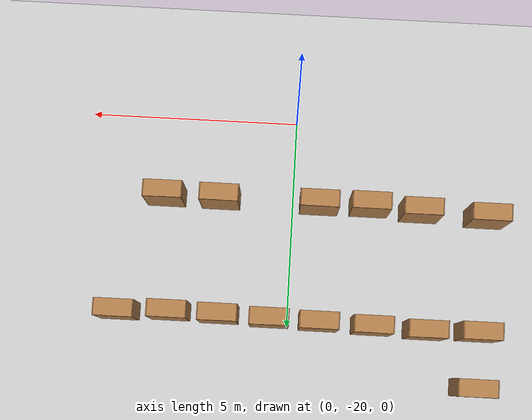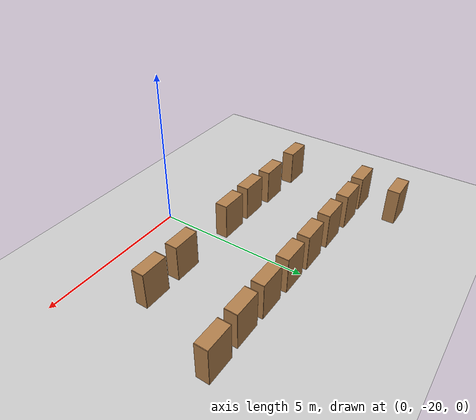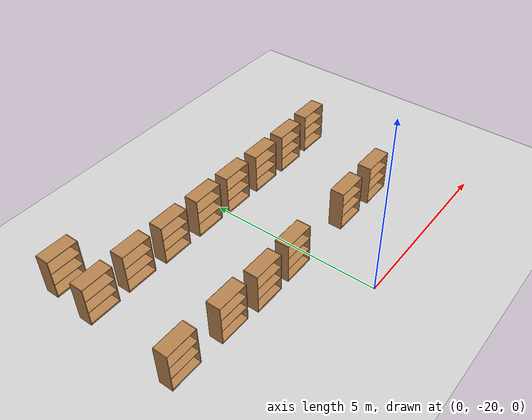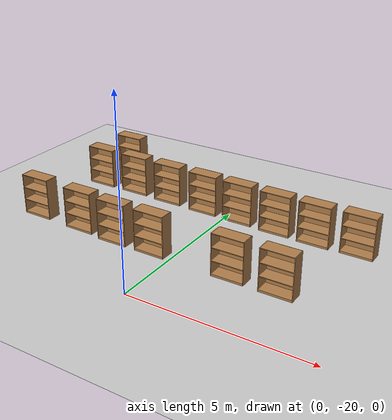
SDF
<sdf version="1.6">
 <world name="default">
  <model name="ground_plane">
   <static>1</static>
   <link name="link">
    <collision name="collision">
     <geometry><plane><normal>0 0 1</normal><size>100 100</size></plane></geometry>
     <surface>
      <contact><collide_bitmask>65535</collide_bitmask></contact>
      <friction><ode><mu>100</mu><mu2>50</mu2></ode></friction>
     </surface>
    </collision>
    <visual name="visual">
     <cast_shadows>0</cast_shadows>
     <geometry><plane><normal>0 0 1</normal><size>100 100</size></plane></geometry>
     <material>
      <script><uri>file://media/materials/scripts/gazebo.material</uri><name>Gazebo/Grey</name></script>
     </material>
    </visual>
   </link>
  </model>
  <model name="bookshelf_clone_19">
   <static>1</static>
   <link name="link">
    <inertial><mass>1</mass></inertial>
    <collision name="back">
     <pose>0 0.005 0.6 0 -0 0</pose>
     <geometry><box><size>0.9 0.01 1.2</size></box></geometry>
    </collision>
    <visual name="visual1">
     <pose>0 0.005 0.6 0 -0 0</pose>
     <geometry><box><size>0.9 0.01 1.2</size></box></geometry>
     <material>
      <script><uri>file://media/materials/scripts/gazebo.material</uri><name>Gazebo/Wood</name></script>
     </material>
    </visual>
    <collision name="left_side">
     <pose>0.45 -0.195 0.6 0 -0 0</pose>
     <geometry><box><size>0.02 0.4 1.2</size></box></geometry>
    </collision>
    <visual name="visual2">
     <pose>0.45 -0.195 0.6 0 -0 0</pose>
     <geometry><box><size>0.02 0.4 1.2</size></box></geometry>
     <material>
      <script><uri>file://media/materials/scripts/gazebo.material</uri><name>Gazebo/Wood</name></script>
     </material>
    </visual>
    <collision name="right_side">
     <pose>-0.45 -0.195 0.6 0 -0 0</pose>
     <geometry><box><size>0.02 0.4 1.2</size></box></geometry>
    </collision>
    <visual name="visual3">
     <pose>-0.45 -0.195 0.6 0 -0 0</pose>
     <geometry><box><size>0.02 0.4 1.2</size></box></geometry>
     <material>
      <script><uri>file://media/materials/scripts/gazebo.material</uri><name>Gazebo/Wood</name></script>
     </material>
    </visual>
    <collision name="bottom">
     <pose>0 -0.195 0.03 0 -0 0</pose>
     <geometry><box><size>0.88 0.4 0.06</size></box></geometry>
    </collision>
    <visual name="visual4">
     <pose>0 -0.195 0.03 0 -0 0</pose>
     <geometry><box><size>0.88 0.4 0.06</size></box></geometry>
     <material>
      <script><uri>file://media/materials/scripts/gazebo.material</uri><name>Gazebo/Wood</name></script>
     </material>
    </visual>
    <collision name="top">
     <pose>0 -0.195 1.19 0 -0 0</pose>
     <geometry><box><size>0.88 0.4 0.02</size></box></geometry>
    </collision>
    <visual name="visual5">
     <pose>0 -0.195 1.19 0 -0 0</pose>
     <geometry><box><size>0.88 0.4 0.02</size></box></geometry>
     <material>
      <script><uri>file://media/materials/scripts/gazebo.material</uri><name>Gazebo/Wood</name></script>
     </material>
    </visual>
    <collision name="low_shelf">
     <pose>0 -0.195 0.43 0 -0 0</pose>
     <geometry><box><size>0.88 0.4 0.02</size></box></geometry>
    </collision>
    <visual name="visual6">
     <pose>0 -0.195 0.43 0 -0 0</pose>
     <geometry><box><size>0.88 0.4 0.02</size></box></geometry>
     <material>
      <script><uri>file://media/materials/scripts/gazebo.material</uri><name>Gazebo/Wood</name></script>
     </material>
    </visual>
    <collision name="high_shelf">
     <pose>0 -0.195 0.8 0 -0 0</pose>
     <geometry><box><size>0.88 0.4 0.02</size></box></geometry>
    </collision>
    <visual name="visual7">
     <pose>0 -0.195 0.8 0 -0 0</pose>
     <geometry><box><size>0.88 0.4 0.02</size></box></geometry>
     <material>
      <script><uri>file://media/materials/scripts/gazebo.material</uri><name>Gazebo/Wood</name></script>
     </material>
    </visual>
   </link>
   <pose>-4.3579 -13.6064 0 0 -0 0</pose>
  </model>
  <model name="bookshelf_clone_20">
   <static>1</static>
   <link name="link">
    <inertial><mass>1</mass></inertial>
    <collision name="back">
     <pose>0 0.005 0.6 0 -0 0</pose>
     <geometry><box><size>0.9 0.01 1.2</size></box></geometry>
    </collision>
    <visual name="visual1">
     <pose>0 0.005 0.6 0 -0 0</pose>
     <geometry><box><size>0.9 0.01 1.2</size></box></geometry>
     <material>
      <script><uri>file://media/materials/scripts/gazebo.material</uri><name>Gazebo/Wood</name></script>
     </material>
    </visual>
    <collision name="left_side">
     <pose>0.45 -0.195 0.6 0 -0 0</pose>
     <geometry><box><size>0.02 0.4 1.2</size></box></geometry>
    </collision>
    <visual name="visual2">
     <pose>0.45 -0.195 0.6 0 -0 0</pose>
     <geometry><box><size>0.02 0.4 1.2</size></box></geometry>
     <material>
      <script><uri>file://media/materials/scripts/gazebo.material</uri><name>Gazebo/Wood</name></script>
     </material>
    </visual>
    <collision name="right_side">
     <pose>-0.45 -0.195 0.6 0 -0 0</pose>
     <geometry><box><size>0.02 0.4 1.2</size></box></geometry>
    </collision>
    <visual name="visual3">
     <pose>-0.45 -0.195 0.6 0 -0 0</pose>
     <geometry><box><size>0.02 0.4 1.2</size></box></geometry>
     <material>
      <script><uri>file://media/materials/scripts/gazebo.material</uri><name>Gazebo/Wood</name></script>
     </material>
    </visual>
    <collision name="bottom">
     <pose>0 -0.195 0.03 0 -0 0</pose>
     <geometry><box><size>0.88 0.4 0.06</size></box></geometry>
    </collision>
    <visual name="visual4">
     <pose>0 -0.195 0.03 0 -0 0</pose>
     <geometry><box><size>0.88 0.4 0.06</size></box></geometry>
     <material>
      <script><uri>file://media/materials/scripts/gazebo.material</uri><name>Gazebo/Wood</name></script>
     </material>
    </visual>
    <collision name="top">
     <pose>0 -0.195 1.19 0 -0 0</pose>
     <geometry><box><size>0.88 0.4 0.02</size></box></geometry>
    </collision>
    <visual name="visual5">
     <pose>0 -0.195 1.19 0 -0 0</pose>
     <geometry><box><size>0.88 0.4 0.02</size></box></geometry>
     <material>
      <script><uri>file://media/materials/scripts/gazebo.material</uri><name>Gazebo/Wood</name></script>
     </material>
    </visual>
    <collision name="low_shelf">
     <pose>0 -0.195 0.43 0 -0 0</pose>
     <geometry><box><size>0.88 0.4 0.02</size></box></geometry>
    </collision>
    <visual name="visual6">
     <pose>0 -0.195 0.43 0 -0 0</pose>
     <geometry><box><size>0.88 0.4 0.02</size></box></geometry>
     <material>
      <script><uri>file://media/materials/scripts/gazebo.material</uri><name>Gazebo/Wood</name></script>
     </material>
    </visual>
    <collision name="high_shelf">
     <pose>0 -0.195 0.8 0 -0 0</pose>
     <geometry><box><size>0.88 0.4 0.02</size></box></geometry>
    </collision>
    <visual name="visual7">
     <pose>0 -0.195 0.8 0 -0 0</pose>
     <geometry><box><size>0.88 0.4 0.02</size></box></geometry>
     <material>
      <script><uri>file://media/materials/scripts/gazebo.material</uri><name>Gazebo/Wood</name></script>
     </material>
    </visual>
   </link>
   <pose>-4.44997 -14.9019 0 0 -0 0</pose>
  </model>
  <model name="bookshelf_clone_21">
   <static>1</static>
   <link name="link">
    <inertial><mass>1</mass></inertial>
    <collision name="back">
     <pose>0 0.005 0.6 0 -0 0</pose>
     <geometry><box><size>0.9 0.01 1.2</size></box></geometry>
    </collision>
    <visual name="visual1">
     <pose>0 0.005 0.6 0 -0 0</pose>
     <geometry><box><size>0.9 0.01 1.2</size></box></geometry>
     <material>
      <script><uri>file://media/materials/scripts/gazebo.material</uri><name>Gazebo/Wood</name></script>
     </material>
    </visual>
    <collision name="left_side">
     <pose>0.45 -0.195 0.6 0 -0 0</pose>
     <geometry><box><size>0.02 0.4 1.2</size></box></geometry>
    </collision>
    <visual name="visual2">
     <pose>0.45 -0.195 0.6 0 -0 0</pose>
     <geometry><box><size>0.02 0.4 1.2</size></box></geometry>
     <material>
      <script><uri>file://media/materials/scripts/gazebo.material</uri><name>Gazebo/Wood</name></script>
     </material>
    </visual>
    <collision name="right_side">
     <pose>-0.45 -0.195 0.6 0 -0 0</pose>
     <geometry><box><size>0.02 0.4 1.2</size></box></geometry>
    </collision>
    <visual name="visual3">
     <pose>-0.45 -0.195 0.6 0 -0 0</pose>
     <geometry><box><size>0.02 0.4 1.2</size></box></geometry>
     <material>
      <script><uri>file://media/materials/scripts/gazebo.material</uri><name>Gazebo/Wood</name></script>
     </material>
    </visual>
    <collision name="bottom">
     <pose>0 -0.195 0.03 0 -0 0</pose>
     <geometry><box><size>0.88 0.4 0.06</size></box></geometry>
    </collision>
    <visual name="visual4">
     <pose>0 -0.195 0.03 0 -0 0</pose>
     <geometry><box><size>0.88 0.4 0.06</size></box></geometry>
     <material>
      <script><uri>file://media/materials/scripts/gazebo.material</uri><name>Gazebo/Wood</name></script>
     </material>
    </visual>
    <collision name="top">
     <pose>0 -0.195 1.19 0 -0 0</pose>
     <geometry><box><size>0.88 0.4 0.02</size></box></geometry>
    </collision>
    <visual name="visual5">
     <pose>0 -0.195 1.19 0 -0 0</pose>
     <geometry><box><size>0.88 0.4 0.02</size></box></geometry>
     <material>
      <script><uri>file://media/materials/scripts/gazebo.material</uri><name>Gazebo/Wood</name></script>
     </material>
    </visual>
    <collision name="low_shelf">
     <pose>0 -0.195 0.43 0 -0 0</pose>
     <geometry><box><size>0.88 0.4 0.02</size></box></geometry>
    </collision>
    <visual name="visual6">
     <pose>0 -0.195 0.43 0 -0 0</pose>
     <geometry><box><size>0.88 0.4 0.02</size></box></geometry>
     <material>
      <script><uri>file://media/materials/scripts/gazebo.material</uri><name>Gazebo/Wood</name></script>
     </material>
    </visual>
    <collision name="high_shelf">
     <pose>0 -0.195 0.8 0 -0 0</pose>
     <geometry><box><size>0.88 0.4 0.02</size></box></geometry>
    </collision>
    <visual name="visual7">
     <pose>0 -0.195 0.8 0 -0 0</pose>
     <geometry><box><size>0.88 0.4 0.02</size></box></geometry>
     <material>
      <script><uri>file://media/materials/scripts/gazebo.material</uri><name>Gazebo/Wood</name></script>
     </material>
    </visual>
   </link>
   <pose>-4.61221 -17.6478 0 0 -0 0</pose>
  </model>
  <model name="bookshelf_clone_17_clone_7">
   <static>1</static>
   <link name="link">
    <inertial><mass>1</mass></inertial>
    <collision name="back">
     <pose>0 0.005 0.6 0 -0 0</pose>
     <geometry><box><size>0.9 0.01 1.2</size></box></geometry>
    </collision>
    <visual name="visual1">
     <pose>0 0.005 0.6 0 -0 0</pose>
     <geometry><box><size>0.9 0.01 1.2</size></box></geometry>
     <material>
      <script><uri>file://media/materials/scripts/gazebo.material</uri><name>Gazebo/Wood</name></script>
     </material>
    </visual>
    <collision name="left_side">
     <pose>0.45 -0.195 0.6 0 -0 0</pose>
     <geometry><box><size>0.02 0.4 1.2</size></box></geometry>
    </collision>
    <visual name="visual2">
     <pose>0.45 -0.195 0.6 0 -0 0</pose>
     <geometry><box><size>0.02 0.4 1.2</size></box></geometry>
     <material>
      <script><uri>file://media/materials/scripts/gazebo.material</uri><name>Gazebo/Wood</name></script>
     </material>
    </visual>
    <collision name="right_side">
     <pose>-0.45 -0.195 0.6 0 -0 0</pose>
     <geometry><box><size>0.02 0.4 1.2</size></box></geometry>
    </collision>
    <visual name="visual3">
     <pose>-0.45 -0.195 0.6 0 -0 0</pose>
     <geometry><box><size>0.02 0.4 1.2</size></box></geometry>
     <material>
      <script><uri>file://media/materials/scripts/gazebo.material</uri><name>Gazebo/Wood</name></script>
     </material>
    </visual>
    <collision name="bottom">
     <pose>0 -0.195 0.03 0 -0 0</pose>
     <geometry><box><size>0.88 0.4 0.06</size></box></geometry>
    </collision>
    <visual name="visual4">
     <pose>0 -0.195 0.03 0 -0 0</pose>
     <geometry><box><size>0.88 0.4 0.06</size></box></geometry>
     <material>
      <script><uri>file://media/materials/scripts/gazebo.material</uri><name>Gazebo/Wood</name></script>
     </material>
    </visual>
    <collision name="top">
     <pose>0 -0.195 1.19 0 -0 0</pose>
     <geometry><box><size>0.88 0.4 0.02</size></box></geometry>
    </collision>
    <visual name="visual5">
     <pose>0 -0.195 1.19 0 -0 0</pose>
     <geometry><box><size>0.88 0.4 0.02</size></box></geometry>
     <material>
      <script><uri>file://media/materials/scripts/gazebo.material</uri><name>Gazebo/Wood</name></script>
     </material>
    </visual>
    <collision name="low_shelf">
     <pose>0 -0.195 0.43 0 -0 0</pose>
     <geometry><box><size>0.88 0.4 0.02</size></box></geometry>
    </collision>
    <visual name="visual6">
     <pose>0 -0.195 0.43 0 -0 0</pose>
     <geometry><box><size>0.88 0.4 0.02</size></box></geometry>
     <material>
      <script><uri>file://media/materials/scripts/gazebo.material</uri><name>Gazebo/Wood</name></script>
     </material>
    </visual>
    <collision name="high_shelf">
     <pose>0 -0.195 0.8 0 -0 0</pose>
     <geometry><box><size>0.88 0.4 0.02</size></box></geometry>
    </collision>
    <visual name="visual7">
     <pose>0 -0.195 0.8 0 -0 0</pose>
     <geometry><box><size>0.88 0.4 0.02</size></box></geometry>
     <material>
      <script><uri>file://media/materials/scripts/gazebo.material</uri><name>Gazebo/Wood</name></script>
     </material>
    </visual>
   </link>
   <pose>-3.21581 -14.8822 0 0 -0 0</pose>
  </model>
  <model name="bookshelf_clone_17_clone_8">
   <static>1</static>
   <link name="link">
    <inertial><mass>1</mass></inertial>
    <collision name="back">
     <pose>0 0.005 0.6 0 -0 0</pose>
     <geometry><box><size>0.9 0.01 1.2</size></box></geometry>
    </collision>
    <visual name="visual1">
     <pose>0 0.005 0.6 0 -0 0</pose>
     <geometry><box><size>0.9 0.01 1.2</size></box></geometry>
     <material>
      <script><uri>file://media/materials/scripts/gazebo.material</uri><name>Gazebo/Wood</name></script>
     </material>
    </visual>
    <collision name="left_side">
     <pose>0.45 -0.195 0.6 0 -0 0</pose>
     <geometry><box><size>0.02 0.4 1.2</size></box></geometry>
    </collision>
    <visual name="visual2">
     <pose>0.45 -0.195 0.6 0 -0 0</pose>
     <geometry><box><size>0.02 0.4 1.2</size></box></geometry>
     <material>
      <script><uri>file://media/materials/scripts/gazebo.material</uri><name>Gazebo/Wood</name></script>
     </material>
    </visual>
    <collision name="right_side">
     <pose>-0.45 -0.195 0.6 0 -0 0</pose>
     <geometry><box><size>0.02 0.4 1.2</size></box></geometry>
    </collision>
    <visual name="visual3">
     <pose>-0.45 -0.195 0.6 0 -0 0</pose>
     <geometry><box><size>0.02 0.4 1.2</size></box></geometry>
     <material>
      <script><uri>file://media/materials/scripts/gazebo.material</uri><name>Gazebo/Wood</name></script>
     </material>
    </visual>
    <collision name="bottom">
     <pose>0 -0.195 0.03 0 -0 0</pose>
     <geometry><box><size>0.88 0.4 0.06</size></box></geometry>
    </collision>
    <visual name="visual4">
     <pose>0 -0.195 0.03 0 -0 0</pose>
     <geometry><box><size>0.88 0.4 0.06</size></box></geometry>
     <material>
      <script><uri>file://media/materials/scripts/gazebo.material</uri><name>Gazebo/Wood</name></script>
     </material>
    </visual>
    <collision name="top">
     <pose>0 -0.195 1.19 0 -0 0</pose>
     <geometry><box><size>0.88 0.4 0.02</size></box></geometry>
    </collision>
    <visual name="visual5">
     <pose>0 -0.195 1.19 0 -0 0</pose>
     <geometry><box><size>0.88 0.4 0.02</size></box></geometry>
     <material>
      <script><uri>file://media/materials/scripts/gazebo.material</uri><name>Gazebo/Wood</name></script>
     </material>
    </visual>
    <collision name="low_shelf">
     <pose>0 -0.195 0.43 0 -0 0</pose>
     <geometry><box><size>0.88 0.4 0.02</size></box></geometry>
    </collision>
    <visual name="visual6">
     <pose>0 -0.195 0.43 0 -0 0</pose>
     <geometry><box><size>0.88 0.4 0.02</size></box></geometry>
     <material>
      <script><uri>file://media/materials/scripts/gazebo.material</uri><name>Gazebo/Wood</name></script>
     </material>
    </visual>
    <collision name="high_shelf">
     <pose>0 -0.195 0.8 0 -0 0</pose>
     <geometry><box><size>0.88 0.4 0.02</size></box></geometry>
    </collision>
    <visual name="visual7">
     <pose>0 -0.195 0.8 0 -0 0</pose>
     <geometry><box><size>0.88 0.4 0.02</size></box></geometry>
     <material>
      <script><uri>file://media/materials/scripts/gazebo.material</uri><name>Gazebo/Wood</name></script>
     </material>
    </visual>
   </link>
   <pose>-1.97579 -14.9227 0 0 -0 0</pose>
  </model>
  <model name="bookshelf_clone_17_clone_9">
   <static>1</static>
   <link name="link">
    <inertial><mass>1</mass></inertial>
    <collision name="back">
     <pose>0 0.005 0.6 0 -0 0</pose>
     <geometry><box><size>0.9 0.01 1.2</size></box></geometry>
    </collision>
    <visual name="visual1">
     <pose>0 0.005 0.6 0 -0 0</pose>
     <geometry><box><size>0.9 0.01 1.2</size></box></geometry>
     <material>
      <script><uri>file://media/materials/scripts/gazebo.material</uri><name>Gazebo/Wood</name></script>
     </material>
    </visual>
    <collision name="left_side">
     <pose>0.45 -0.195 0.6 0 -0 0</pose>
     <geometry><box><size>0.02 0.4 1.2</size></box></geometry>
    </collision>
    <visual name="visual2">
     <pose>0.45 -0.195 0.6 0 -0 0</pose>
     <geometry><box><size>0.02 0.4 1.2</size></box></geometry>
     <material>
      <script><uri>file://media/materials/scripts/gazebo.material</uri><name>Gazebo/Wood</name></script>
     </material>
    </visual>
    <collision name="right_side">
     <pose>-0.45 -0.195 0.6 0 -0 0</pose>
     <geometry><box><size>0.02 0.4 1.2</size></box></geometry>
    </collision>
    <visual name="visual3">
     <pose>-0.45 -0.195 0.6 0 -0 0</pose>
     <geometry><box><size>0.02 0.4 1.2</size></box></geometry>
     <material>
      <script><uri>file://media/materials/scripts/gazebo.material</uri><name>Gazebo/Wood</name></script>
     </material>
    </visual>
    <collision name="bottom">
     <pose>0 -0.195 0.03 0 -0 0</pose>
     <geometry><box><size>0.88 0.4 0.06</size></box></geometry>
    </collision>
    <visual name="visual4">
     <pose>0 -0.195 0.03 0 -0 0</pose>
     <geometry><box><size>0.88 0.4 0.06</size></box></geometry>
     <material>
      <script><uri>file://media/materials/scripts/gazebo.material</uri><name>Gazebo/Wood</name></script>
     </material>
    </visual>
    <collision name="top">
     <pose>0 -0.195 1.19 0 -0 0</pose>
     <geometry><box><size>0.88 0.4 0.02</size></box></geometry>
    </collision>
    <visual name="visual5">
     <pose>0 -0.195 1.19 0 -0 0</pose>
     <geometry><box><size>0.88 0.4 0.02</size></box></geometry>
     <material>
      <script><uri>file://media/materials/scripts/gazebo.material</uri><name>Gazebo/Wood</name></script>
     </material>
    </visual>
    <collision name="low_shelf">
     <pose>0 -0.195 0.43 0 -0 0</pose>
     <geometry><box><size>0.88 0.4 0.02</size></box></geometry>
    </collision>
    <visual name="visual6">
     <pose>0 -0.195 0.43 0 -0 0</pose>
     <geometry><box><size>0.88 0.4 0.02</size></box></geometry>
     <material>
      <script><uri>file://media/materials/scripts/gazebo.material</uri><name>Gazebo/Wood</name></script>
     </material>
    </visual>
    <collision name="high_shelf">
     <pose>0 -0.195 0.8 0 -0 0</pose>
     <geometry><box><size>0.88 0.4 0.02</size></box></geometry>
    </collision>
    <visual name="visual7">
     <pose>0 -0.195 0.8 0 -0 0</pose>
     <geometry><box><size>0.88 0.4 0.02</size></box></geometry>
     <material>
      <script><uri>file://media/materials/scripts/gazebo.material</uri><name>Gazebo/Wood</name></script>
     </material>
    </visual>
   </link>
   <pose>-0.729627 -14.9516 0 0 -0 0</pose>
  </model>
  <model name="bookshelf_clone_17_clone_10">
   <static>1</static>
   <link name="link">
    <inertial><mass>1</mass></inertial>
    <collision name="back">
     <pose>0 0.005 0.6 0 -0 0</pose>
     <geometry><box><size>0.9 0.01 1.2</size></box></geometry>
    </collision>
    <visual name="visual1">
     <pose>0 0.005 0.6 0 -0 0</pose>
     <geometry><box><size>0.9 0.01 1.2</size></box></geometry>
     <material>
      <script><uri>file://media/materials/scripts/gazebo.material</uri><name>Gazebo/Wood</name></script>
     </material>
    </visual>
    <collision name="left_side">
     <pose>0.45 -0.195 0.6 0 -0 0</pose>
     <geometry><box><size>0.02 0.4 1.2</size></box></geometry>
    </collision>
    <visual name="visual2">
     <pose>0.45 -0.195 0.6 0 -0 0</pose>
     <geometry><box><size>0.02 0.4 1.2</size></box></geometry>
     <material>
      <script><uri>file://media/materials/scripts/gazebo.material</uri><name>Gazebo/Wood</name></script>
     </material>
    </visual>
    <collision name="right_side">
     <pose>-0.45 -0.195 0.6 0 -0 0</pose>
     <geometry><box><size>0.02 0.4 1.2</size></box></geometry>
    </collision>
    <visual name="visual3">
     <pose>-0.45 -0.195 0.6 0 -0 0</pose>
     <geometry><box><size>0.02 0.4 1.2</size></box></geometry>
     <material>
      <script><uri>file://media/materials/scripts/gazebo.material</uri><name>Gazebo/Wood</name></script>
     </material>
    </visual>
    <collision name="bottom">
     <pose>0 -0.195 0.03 0 -0 0</pose>
     <geometry><box><size>0.88 0.4 0.06</size></box></geometry>
    </collision>
    <visual name="visual4">
     <pose>0 -0.195 0.03 0 -0 0</pose>
     <geometry><box><size>0.88 0.4 0.06</size></box></geometry>
     <material>
      <script><uri>file://media/materials/scripts/gazebo.material</uri><name>Gazebo/Wood</name></script>
     </material>
    </visual>
    <collision name="top">
     <pose>0 -0.195 1.19 0 -0 0</pose>
     <geometry><box><size>0.88 0.4 0.02</size></box></geometry>
    </collision>
    <visual name="visual5">
     <pose>0 -0.195 1.19 0 -0 0</pose>
     <geometry><box><size>0.88 0.4 0.02</size></box></geometry>
     <material>
      <script><uri>file://media/materials/scripts/gazebo.material</uri><name>Gazebo/Wood</name></script>
     </material>
    </visual>
    <collision name="low_shelf">
     <pose>0 -0.195 0.43 0 -0 0</pose>
     <geometry><box><size>0.88 0.4 0.02</size></box></geometry>
    </collision>
    <visual name="visual6">
     <pose>0 -0.195 0.43 0 -0 0</pose>
     <geometry><box><size>0.88 0.4 0.02</size></box></geometry>
     <material>
      <script><uri>file://media/materials/scripts/gazebo.material</uri><name>Gazebo/Wood</name></script>
     </material>
    </visual>
    <collision name="high_shelf">
     <pose>0 -0.195 0.8 0 -0 0</pose>
     <geometry><box><size>0.88 0.4 0.02</size></box></geometry>
    </collision>
    <visual name="visual7">
     <pose>0 -0.195 0.8 0 -0 0</pose>
     <geometry><box><size>0.88 0.4 0.02</size></box></geometry>
     <material>
      <script><uri>file://media/materials/scripts/gazebo.material</uri><name>Gazebo/Wood</name></script>
     </material>
    </visual>
   </link>
   <pose>0.419805 -14.9771 0 0 -0 0</pose>
  </model>
  <model name="bookshelf_clone_17_clone_11">
   <static>1</static>
   <link name="link">
    <inertial><mass>1</mass></inertial>
    <collision name="back">
     <pose>0 0.005 0.6 0 -0 0</pose>
     <geometry><box><size>0.9 0.01 1.2</size></box></geometry>
    </collision>
    <visual name="visual1">
     <pose>0 0.005 0.6 0 -0 0</pose>
     <geometry><box><size>0.9 0.01 1.2</size></box></geometry>
     <material>
      <script><uri>file://media/materials/scripts/gazebo.material</uri><name>Gazebo/Wood</name></script>
     </material>
    </visual>
    <collision name="left_side">
     <pose>0.45 -0.195 0.6 0 -0 0</pose>
     <geometry><box><size>0.02 0.4 1.2</size></box></geometry>
    </collision>
    <visual name="visual2">
     <pose>0.45 -0.195 0.6 0 -0 0</pose>
     <geometry><box><size>0.02 0.4 1.2</size></box></geometry>
     <material>
      <script><uri>file://media/materials/scripts/gazebo.material</uri><name>Gazebo/Wood</name></script>
     </material>
    </visual>
    <collision name="right_side">
     <pose>-0.45 -0.195 0.6 0 -0 0</pose>
     <geometry><box><size>0.02 0.4 1.2</size></box></geometry>
    </collision>
    <visual name="visual3">
     <pose>-0.45 -0.195 0.6 0 -0 0</pose>
     <geometry><box><size>0.02 0.4 1.2</size></box></geometry>
     <material>
      <script><uri>file://media/materials/scripts/gazebo.material</uri><name>Gazebo/Wood</name></script>
     </material>
    </visual>
    <collision name="bottom">
     <pose>0 -0.195 0.03 0 -0 0</pose>
     <geometry><box><size>0.88 0.4 0.06</size></box></geometry>
    </collision>
    <visual name="visual4">
     <pose>0 -0.195 0.03 0 -0 0</pose>
     <geometry><box><size>0.88 0.4 0.06</size></box></geometry>
     <material>
      <script><uri>file://media/materials/scripts/gazebo.material</uri><name>Gazebo/Wood</name></script>
     </material>
    </visual>
    <collision name="top">
     <pose>0 -0.195 1.19 0 -0 0</pose>
     <geometry><box><size>0.88 0.4 0.02</size></box></geometry>
    </collision>
    <visual name="visual5">
     <pose>0 -0.195 1.19 0 -0 0</pose>
     <geometry><box><size>0.88 0.4 0.02</size></box></geometry>
     <material>
      <script><uri>file://media/materials/scripts/gazebo.material</uri><name>Gazebo/Wood</name></script>
     </material>
    </visual>
    <collision name="low_shelf">
     <pose>0 -0.195 0.43 0 -0 0</pose>
     <geometry><box><size>0.88 0.4 0.02</size></box></geometry>
    </collision>
    <visual name="visual6">
     <pose>0 -0.195 0.43 0 -0 0</pose>
     <geometry><box><size>0.88 0.4 0.02</size></box></geometry>
     <material>
      <script><uri>file://media/materials/scripts/gazebo.material</uri><name>Gazebo/Wood</name></script>
     </material>
    </visual>
    <collision name="high_shelf">
     <pose>0 -0.195 0.8 0 -0 0</pose>
     <geometry><box><size>0.88 0.4 0.02</size></box></geometry>
    </collision>
    <visual name="visual7">
     <pose>0 -0.195 0.8 0 -0 0</pose>
     <geometry><box><size>0.88 0.4 0.02</size></box></geometry>
     <material>
      <script><uri>file://media/materials/scripts/gazebo.material</uri><name>Gazebo/Wood</name></script>
     </material>
    </visual>
   </link>
   <pose>1.6064 -15.0132 0 0 -0 0</pose>
  </model>
  <model name="bookshelf_clone_17_clone_12">
   <static>1</static>
   <link name="link">
    <inertial><mass>1</mass></inertial>
    <collision name="back">
     <pose>0 0.005 0.6 0 -0 0</pose>
     <geometry><box><size>0.9 0.01 1.2</size></box></geometry>
    </collision>
    <visual name="visual1">
     <pose>0 0.005 0.6 0 -0 0</pose>
     <geometry><box><size>0.9 0.01 1.2</size></box></geometry>
     <material>
      <script><uri>file://media/materials/scripts/gazebo.material</uri><name>Gazebo/Wood</name></script>
     </material>
    </visual>
    <collision name="left_side">
     <pose>0.45 -0.195 0.6 0 -0 0</pose>
     <geometry><box><size>0.02 0.4 1.2</size></box></geometry>
    </collision>
    <visual name="visual2">
     <pose>0.45 -0.195 0.6 0 -0 0</pose>
     <geometry><box><size>0.02 0.4 1.2</size></box></geometry>
     <material>
      <script><uri>file://media/materials/scripts/gazebo.material</uri><name>Gazebo/Wood</name></script>
     </material>
    </visual>
    <collision name="right_side">
     <pose>-0.45 -0.195 0.6 0 -0 0</pose>
     <geometry><box><size>0.02 0.4 1.2</size></box></geometry>
    </collision>
    <visual name="visual3">
     <pose>-0.45 -0.195 0.6 0 -0 0</pose>
     <geometry><box><size>0.02 0.4 1.2</size></box></geometry>
     <material>
      <script><uri>file://media/materials/scripts/gazebo.material</uri><name>Gazebo/Wood</name></script>
     </material>
    </visual>
    <collision name="bottom">
     <pose>0 -0.195 0.03 0 -0 0</pose>
     <geometry><box><size>0.88 0.4 0.06</size></box></geometry>
    </collision>
    <visual name="visual4">
     <pose>0 -0.195 0.03 0 -0 0</pose>
     <geometry><box><size>0.88 0.4 0.06</size></box></geometry>
     <material>
      <script><uri>file://media/materials/scripts/gazebo.material</uri><name>Gazebo/Wood</name></script>
     </material>
    </visual>
    <collision name="top">
     <pose>0 -0.195 1.19 0 -0 0</pose>
     <geometry><box><size>0.88 0.4 0.02</size></box></geometry>
    </collision>
    <visual name="visual5">
     <pose>0 -0.195 1.19 0 -0 0</pose>
     <geometry><box><size>0.88 0.4 0.02</size></box></geometry>
     <material>
      <script><uri>file://media/materials/scripts/gazebo.material</uri><name>Gazebo/Wood</name></script>
     </material>
    </visual>
    <collision name="low_shelf">
     <pose>0 -0.195 0.43 0 -0 0</pose>
     <geometry><box><size>0.88 0.4 0.02</size></box></geometry>
    </collision>
    <visual name="visual6">
     <pose>0 -0.195 0.43 0 -0 0</pose>
     <geometry><box><size>0.88 0.4 0.02</size></box></geometry>
     <material>
      <script><uri>file://media/materials/scripts/gazebo.material</uri><name>Gazebo/Wood</name></script>
     </material>
    </visual>
    <collision name="high_shelf">
     <pose>0 -0.195 0.8 0 -0 0</pose>
     <geometry><box><size>0.88 0.4 0.02</size></box></geometry>
    </collision>
    <visual name="visual7">
     <pose>0 -0.195 0.8 0 -0 0</pose>
     <geometry><box><size>0.88 0.4 0.02</size></box></geometry>
     <material>
      <script><uri>file://media/materials/scripts/gazebo.material</uri><name>Gazebo/Wood</name></script>
     </material>
    </visual>
   </link>
   <pose>2.76341 -15.0328 0 0 -0 0</pose>
  </model>
  <model name="bookshelf_clone_17_clone_13">
   <static>1</static>
   <link name="link">
    <inertial><mass>1</mass></inertial>
    <collision name="back">
     <pose>0 0.005 0.6 0 -0 0</pose>
     <geometry><box><size>0.9 0.01 1.2</size></box></geometry>
    </collision>
    <visual name="visual1">
     <pose>0 0.005 0.6 0 -0 0</pose>
     <geometry><box><size>0.9 0.01 1.2</size></box></geometry>
     <material>
      <script><uri>file://media/materials/scripts/gazebo.material</uri><name>Gazebo/Wood</name></script>
     </material>
    </visual>
    <collision name="left_side">
     <pose>0.45 -0.195 0.6 0 -0 0</pose>
     <geometry><box><size>0.02 0.4 1.2</size></box></geometry>
    </collision>
    <visual name="visual2">
     <pose>0.45 -0.195 0.6 0 -0 0</pose>
     <geometry><box><size>0.02 0.4 1.2</size></box></geometry>
     <material>
      <script><uri>file://media/materials/scripts/gazebo.material</uri><name>Gazebo/Wood</name></script>
     </material>
    </visual>
    <collision name="right_side">
     <pose>-0.45 -0.195 0.6 0 -0 0</pose>
     <geometry><box><size>0.02 0.4 1.2</size></box></geometry>
    </collision>
    <visual name="visual3">
     <pose>-0.45 -0.195 0.6 0 -0 0</pose>
     <geometry><box><size>0.02 0.4 1.2</size></box></geometry>
     <material>
      <script><uri>file://media/materials/scripts/gazebo.material</uri><name>Gazebo/Wood</name></script>
     </material>
    </visual>
    <collision name="bottom">
     <pose>0 -0.195 0.03 0 -0 0</pose>
     <geometry><box><size>0.88 0.4 0.06</size></box></geometry>
    </collision>
    <visual name="visual4">
     <pose>0 -0.195 0.03 0 -0 0</pose>
     <geometry><box><size>0.88 0.4 0.06</size></box></geometry>
     <material>
      <script><uri>file://media/materials/scripts/gazebo.material</uri><name>Gazebo/Wood</name></script>
     </material>
    </visual>
    <collision name="top">
     <pose>0 -0.195 1.19 0 -0 0</pose>
     <geometry><box><size>0.88 0.4 0.02</size></box></geometry>
    </collision>
    <visual name="visual5">
     <pose>0 -0.195 1.19 0 -0 0</pose>
     <geometry><box><size>0.88 0.4 0.02</size></box></geometry>
     <material>
      <script><uri>file://media/materials/scripts/gazebo.material</uri><name>Gazebo/Wood</name></script>
     </material>
    </visual>
    <collision name="low_shelf">
     <pose>0 -0.195 0.43 0 -0 0</pose>
     <geometry><box><size>0.88 0.4 0.02</size></box></geometry>
    </collision>
    <visual name="visual6">
     <pose>0 -0.195 0.43 0 -0 0</pose>
     <geometry><box><size>0.88 0.4 0.02</size></box></geometry>
     <material>
      <script><uri>file://media/materials/scripts/gazebo.material</uri><name>Gazebo/Wood</name></script>
     </material>
    </visual>
    <collision name="high_shelf">
     <pose>0 -0.195 0.8 0 -0 0</pose>
     <geometry><box><size>0.88 0.4 0.02</size></box></geometry>
    </collision>
    <visual name="visual7">
     <pose>0 -0.195 0.8 0 -0 0</pose>
     <geometry><box><size>0.88 0.4 0.02</size></box></geometry>
     <material>
      <script><uri>file://media/materials/scripts/gazebo.material</uri><name>Gazebo/Wood</name></script>
     </material>
    </visual>
   </link>
   <pose>3.9743 -14.9934 0 0 -0 0</pose>
  </model>
  <model name="bookshelf_clone_17_clone_7_clone">
   <static>1</static>
   <link name="link">
    <inertial><mass>1</mass></inertial>
    <collision name="back">
     <pose>0 0.005 0.6 0 -0 0</pose>
     <geometry><box><size>0.9 0.01 1.2</size></box></geometry>
    </collision>
    <visual name="visual1">
     <pose>0 0.005 0.6 0 -0 0</pose>
     <geometry><box><size>0.9 0.01 1.2</size></box></geometry>
     <material>
      <script><uri>file://media/materials/scripts/gazebo.material</uri><name>Gazebo/Wood</name></script>
     </material>
    </visual>
    <collision name="left_side">
     <pose>0.45 -0.195 0.6 0 -0 0</pose>
     <geometry><box><size>0.02 0.4 1.2</size></box></geometry>
    </collision>
    <visual name="visual2">
     <pose>0.45 -0.195 0.6 0 -0 0</pose>
     <geometry><box><size>0.02 0.4 1.2</size></box></geometry>
     <material>
      <script><uri>file://media/materials/scripts/gazebo.material</uri><name>Gazebo/Wood</name></script>
     </material>
    </visual>
    <collision name="right_side">
     <pose>-0.45 -0.195 0.6 0 -0 0</pose>
     <geometry><box><size>0.02 0.4 1.2</size></box></geometry>
    </collision>
    <visual name="visual3">
     <pose>-0.45 -0.195 0.6 0 -0 0</pose>
     <geometry><box><size>0.02 0.4 1.2</size></box></geometry>
     <material>
      <script><uri>file://media/materials/scripts/gazebo.material</uri><name>Gazebo/Wood</name></script>
     </material>
    </visual>
    <collision name="bottom">
     <pose>0 -0.195 0.03 0 -0 0</pose>
     <geometry><box><size>0.88 0.4 0.06</size></box></geometry>
    </collision>
    <visual name="visual4">
     <pose>0 -0.195 0.03 0 -0 0</pose>
     <geometry><box><size>0.88 0.4 0.06</size></box></geometry>
     <material>
      <script><uri>file://media/materials/scripts/gazebo.material</uri><name>Gazebo/Wood</name></script>
     </material>
    </visual>
    <collision name="top">
     <pose>0 -0.195 1.19 0 -0 0</pose>
     <geometry><box><size>0.88 0.4 0.02</size></box></geometry>
    </collision>
    <visual name="visual5">
     <pose>0 -0.195 1.19 0 -0 0</pose>
     <geometry><box><size>0.88 0.4 0.02</size></box></geometry>
     <material>
      <script><uri>file://media/materials/scripts/gazebo.material</uri><name>Gazebo/Wood</name></script>
     </material>
    </visual>
    <collision name="low_shelf">
     <pose>0 -0.195 0.43 0 -0 0</pose>
     <geometry><box><size>0.88 0.4 0.02</size></box></geometry>
    </collision>
    <visual name="visual6">
     <pose>0 -0.195 0.43 0 -0 0</pose>
     <geometry><box><size>0.88 0.4 0.02</size></box></geometry>
     <material>
      <script><uri>file://media/materials/scripts/gazebo.material</uri><name>Gazebo/Wood</name></script>
     </material>
    </visual>
    <collision name="high_shelf">
     <pose>0 -0.195 0.8 0 -0 0</pose>
     <geometry><box><size>0.88 0.4 0.02</size></box></geometry>
    </collision>
    <visual name="visual7">
     <pose>0 -0.195 0.8 0 -0 0</pose>
     <geometry><box><size>0.88 0.4 0.02</size></box></geometry>
     <material>
      <script><uri>file://media/materials/scripts/gazebo.material</uri><name>Gazebo/Wood</name></script>
     </material>
    </visual>
   </link>
   <pose>-3.03266 -17.7044 0 0 -0 0</pose>
  </model>
  <model name="bookshelf_clone_17_clone_7_clone_0">
   <static>1</static>
   <link name="link">
    <inertial><mass>1</mass></inertial>
    <collision name="back">
     <pose>0 0.005 0.6 0 -0 0</pose>
     <geometry><box><size>0.9 0.01 1.2</size></box></geometry>
    </collision>
    <visual name="visual1">
     <pose>0 0.005 0.6 0 -0 0</pose>
     <geometry><box><size>0.9 0.01 1.2</size></box></geometry>
     <material>
      <script><uri>file://media/materials/scripts/gazebo.material</uri><name>Gazebo/Wood</name></script>
     </material>
    </visual>
    <collision name="left_side">
     <pose>0.45 -0.195 0.6 0 -0 0</pose>
     <geometry><box><size>0.02 0.4 1.2</size></box></geometry>
    </collision>
    <visual name="visual2">
     <pose>0.45 -0.195 0.6 0 -0 0</pose>
     <geometry><box><size>0.02 0.4 1.2</size></box></geometry>
     <material>
      <script><uri>file://media/materials/scripts/gazebo.material</uri><name>Gazebo/Wood</name></script>
     </material>
    </visual>
    <collision name="right_side">
     <pose>-0.45 -0.195 0.6 0 -0 0</pose>
     <geometry><box><size>0.02 0.4 1.2</size></box></geometry>
    </collision>
    <visual name="visual3">
     <pose>-0.45 -0.195 0.6 0 -0 0</pose>
     <geometry><box><size>0.02 0.4 1.2</size></box></geometry>
     <material>
      <script><uri>file://media/materials/scripts/gazebo.material</uri><name>Gazebo/Wood</name></script>
     </material>
    </visual>
    <collision name="bottom">
     <pose>0 -0.195 0.03 0 -0 0</pose>
     <geometry><box><size>0.88 0.4 0.06</size></box></geometry>
    </collision>
    <visual name="visual4">
     <pose>0 -0.195 0.03 0 -0 0</pose>
     <geometry><box><size>0.88 0.4 0.06</size></box></geometry>
     <material>
      <script><uri>file://media/materials/scripts/gazebo.material</uri><name>Gazebo/Wood</name></script>
     </material>
    </visual>
    <collision name="top">
     <pose>0 -0.195 1.19 0 -0 0</pose>
     <geometry><box><size>0.88 0.4 0.02</size></box></geometry>
    </collision>
    <visual name="visual5">
     <pose>0 -0.195 1.19 0 -0 0</pose>
     <geometry><box><size>0.88 0.4 0.02</size></box></geometry>
     <material>
      <script><uri>file://media/materials/scripts/gazebo.material</uri><name>Gazebo/Wood</name></script>
     </material>
    </visual>
    <collision name="low_shelf">
     <pose>0 -0.195 0.43 0 -0 0</pose>
     <geometry><box><size>0.88 0.4 0.02</size></box></geometry>
    </collision>
    <visual name="visual6">
     <pose>0 -0.195 0.43 0 -0 0</pose>
     <geometry><box><size>0.88 0.4 0.02</size></box></geometry>
     <material>
      <script><uri>file://media/materials/scripts/gazebo.material</uri><name>Gazebo/Wood</name></script>
     </material>
    </visual>
    <collision name="high_shelf">
     <pose>0 -0.195 0.8 0 -0 0</pose>
     <geometry><box><size>0.88 0.4 0.02</size></box></geometry>
    </collision>
    <visual name="visual7">
     <pose>0 -0.195 0.8 0 -0 0</pose>
     <geometry><box><size>0.88 0.4 0.02</size></box></geometry>
     <material>
      <script><uri>file://media/materials/scripts/gazebo.material</uri><name>Gazebo/Wood</name></script>
     </material>
    </visual>
   </link>
   <pose>-1.82697 -17.7805 0 0 -0 0</pose>
  </model>
  <model name="bookshelf_clone_17_clone_7_clone_1">
   <static>1</static>
   <link name="link">
    <inertial><mass>1</mass></inertial>
    <collision name="back">
     <pose>0 0.005 0.6 0 -0 0</pose>
     <geometry><box><size>0.9 0.01 1.2</size></box></geometry>
    </collision>
    <visual name="visual1">
     <pose>0 0.005 0.6 0 -0 0</pose>
     <geometry><box><size>0.9 0.01 1.2</size></box></geometry>
     <material>
      <script><uri>file://media/materials/scripts/gazebo.material</uri><name>Gazebo/Wood</name></script>
     </material>
    </visual>
    <collision name="left_side">
     <pose>0.45 -0.195 0.6 0 -0 0</pose>
     <geometry><box><size>0.02 0.4 1.2</size></box></geometry>
    </collision>
    <visual name="visual2">
     <pose>0.45 -0.195 0.6 0 -0 0</pose>
     <geometry><box><size>0.02 0.4 1.2</size></box></geometry>
     <material>
      <script><uri>file://media/materials/scripts/gazebo.material</uri><name>Gazebo/Wood</name></script>
     </material>
    </visual>
    <collision name="right_side">
     <pose>-0.45 -0.195 0.6 0 -0 0</pose>
     <geometry><box><size>0.02 0.4 1.2</size></box></geometry>
    </collision>
    <visual name="visual3">
     <pose>-0.45 -0.195 0.6 0 -0 0</pose>
     <geometry><box><size>0.02 0.4 1.2</size></box></geometry>
     <material>
      <script><uri>file://media/materials/scripts/gazebo.material</uri><name>Gazebo/Wood</name></script>
     </material>
    </visual>
    <collision name="bottom">
     <pose>0 -0.195 0.03 0 -0 0</pose>
     <geometry><box><size>0.88 0.4 0.06</size></box></geometry>
    </collision>
    <visual name="visual4">
     <pose>0 -0.195 0.03 0 -0 0</pose>
     <geometry><box><size>0.88 0.4 0.06</size></box></geometry>
     <material>
      <script><uri>file://media/materials/scripts/gazebo.material</uri><name>Gazebo/Wood</name></script>
     </material>
    </visual>
    <collision name="top">
     <pose>0 -0.195 1.19 0 -0 0</pose>
     <geometry><box><size>0.88 0.4 0.02</size></box></geometry>
    </collision>
    <visual name="visual5">
     <pose>0 -0.195 1.19 0 -0 0</pose>
     <geometry><box><size>0.88 0.4 0.02</size></box></geometry>
     <material>
      <script><uri>file://media/materials/scripts/gazebo.material</uri><name>Gazebo/Wood</name></script>
     </material>
    </visual>
    <collision name="low_shelf">
     <pose>0 -0.195 0.43 0 -0 0</pose>
     <geometry><box><size>0.88 0.4 0.02</size></box></geometry>
    </collision>
    <visual name="visual6">
     <pose>0 -0.195 0.43 0 -0 0</pose>
     <geometry><box><size>0.88 0.4 0.02</size></box></geometry>
     <material>
      <script><uri>file://media/materials/scripts/gazebo.material</uri><name>Gazebo/Wood</name></script>
     </material>
    </visual>
    <collision name="high_shelf">
     <pose>0 -0.195 0.8 0 -0 0</pose>
     <geometry><box><size>0.88 0.4 0.02</size></box></geometry>
    </collision>
    <visual name="visual7">
     <pose>0 -0.195 0.8 0 -0 0</pose>
     <geometry><box><size>0.88 0.4 0.02</size></box></geometry>
     <material>
      <script><uri>file://media/materials/scripts/gazebo.material</uri><name>Gazebo/Wood</name></script>
     </material>
    </visual>
   </link>
   <pose>-0.620987 -17.7682 0 0 -0 0</pose>
  </model>
  <model name="bookshelf_clone_17_clone_7_clone_3">
   <static>1</static>
   <link name="link">
    <inertial><mass>1</mass></inertial>
    <collision name="back">
     <pose>0 0.005 0.6 0 -0 0</pose>
     <geometry><box><size>0.9 0.01 1.2</size></box></geometry>
    </collision>
    <visual name="visual1">
     <pose>0 0.005 0.6 0 -0 0</pose>
     <geometry><box><size>0.9 0.01 1.2</size></box></geometry>
     <material>
      <script><uri>file://media/materials/scripts/gazebo.material</uri><name>Gazebo/Wood</name></script>
     </material>
    </visual>
    <collision name="left_side">
     <pose>0.45 -0.195 0.6 0 -0 0</pose>
     <geometry><box><size>0.02 0.4 1.2</size></box></geometry>
    </collision>
    <visual name="visual2">
     <pose>0.45 -0.195 0.6 0 -0 0</pose>
     <geometry><box><size>0.02 0.4 1.2</size></box></geometry>
     <material>
      <script><uri>file://media/materials/scripts/gazebo.material</uri><name>Gazebo/Wood</name></script>
     </material>
    </visual>
    <collision name="right_side">
     <pose>-0.45 -0.195 0.6 0 -0 0</pose>
     <geometry><box><size>0.02 0.4 1.2</size></box></geometry>
    </collision>
    <visual name="visual3">
     <pose>-0.45 -0.195 0.6 0 -0 0</pose>
     <geometry><box><size>0.02 0.4 1.2</size></box></geometry>
     <material>
      <script><uri>file://media/materials/scripts/gazebo.material</uri><name>Gazebo/Wood</name></script>
     </material>
    </visual>
    <collision name="bottom">
     <pose>0 -0.195 0.03 0 -0 0</pose>
     <geometry><box><size>0.88 0.4 0.06</size></box></geometry>
    </collision>
    <visual name="visual4">
     <pose>0 -0.195 0.03 0 -0 0</pose>
     <geometry><box><size>0.88 0.4 0.06</size></box></geometry>
     <material>
      <script><uri>file://media/materials/scripts/gazebo.material</uri><name>Gazebo/Wood</name></script>
     </material>
    </visual>
    <collision name="top">
     <pose>0 -0.195 1.19 0 -0 0</pose>
     <geometry><box><size>0.88 0.4 0.02</size></box></geometry>
    </collision>
    <visual name="visual5">
     <pose>0 -0.195 1.19 0 -0 0</pose>
     <geometry><box><size>0.88 0.4 0.02</size></box></geometry>
     <material>
      <script><uri>file://media/materials/scripts/gazebo.material</uri><name>Gazebo/Wood</name></script>
     </material>
    </visual>
    <collision name="low_shelf">
     <pose>0 -0.195 0.43 0 -0 0</pose>
     <geometry><box><size>0.88 0.4 0.02</size></box></geometry>
    </collision>
    <visual name="visual6">
     <pose>0 -0.195 0.43 0 -0 0</pose>
     <geometry><box><size>0.88 0.4 0.02</size></box></geometry>
     <material>
      <script><uri>file://media/materials/scripts/gazebo.material</uri><name>Gazebo/Wood</name></script>
     </material>
    </visual>
    <collision name="high_shelf">
     <pose>0 -0.195 0.8 0 -0 0</pose>
     <geometry><box><size>0.88 0.4 0.02</size></box></geometry>
    </collision>
    <visual name="visual7">
     <pose>0 -0.195 0.8 0 -0 0</pose>
     <geometry><box><size>0.88 0.4 0.02</size></box></geometry>
     <material>
      <script><uri>file://media/materials/scripts/gazebo.material</uri><name>Gazebo/Wood</name></script>
     </material>
    </visual>
   </link>
   <pose>1.73229 -17.7881 0 0 -0 0</pose>
  </model>
  <model name="bookshelf_clone_17_clone_7_clone_4">
   <static>1</static>
   <link name="link">
    <inertial><mass>1</mass></inertial>
    <collision name="back">
     <pose>0 0.005 0.6 0 -0 0</pose>
     <geometry><box><size>0.9 0.01 1.2</size></box></geometry>
    </collision>
    <visual name="visual1">
     <pose>0 0.005 0.6 0 -0 0</pose>
     <geometry><box><size>0.9 0.01 1.2</size></box></geometry>
     <material>
      <script><uri>file://media/materials/scripts/gazebo.material</uri><name>Gazebo/Wood</name></script>
     </material>
    </visual>
    <collision name="left_side">
     <pose>0.45 -0.195 0.6 0 -0 0</pose>
     <geometry><box><size>0.02 0.4 1.2</size></box></geometry>
    </collision>
    <visual name="visual2">
     <pose>0.45 -0.195 0.6 0 -0 0</pose>
     <geometry><box><size>0.02 0.4 1.2</size></box></geometry>
     <material>
      <script><uri>file://media/materials/scripts/gazebo.material</uri><name>Gazebo/Wood</name></script>
     </material>
    </visual>
    <collision name="right_side">
     <pose>-0.45 -0.195 0.6 0 -0 0</pose>
     <geometry><box><size>0.02 0.4 1.2</size></box></geometry>
    </collision>
    <visual name="visual3">
     <pose>-0.45 -0.195 0.6 0 -0 0</pose>
     <geometry><box><size>0.02 0.4 1.2</size></box></geometry>
     <material>
      <script><uri>file://media/materials/scripts/gazebo.material</uri><name>Gazebo/Wood</name></script>
     </material>
    </visual>
    <collision name="bottom">
     <pose>0 -0.195 0.03 0 -0 0</pose>
     <geometry><box><size>0.88 0.4 0.06</size></box></geometry>
    </collision>
    <visual name="visual4">
     <pose>0 -0.195 0.03 0 -0 0</pose>
     <geometry><box><size>0.88 0.4 0.06</size></box></geometry>
     <material>
      <script><uri>file://media/materials/scripts/gazebo.material</uri><name>Gazebo/Wood</name></script>
     </material>
    </visual>
    <collision name="top">
     <pose>0 -0.195 1.19 0 -0 0</pose>
     <geometry><box><size>0.88 0.4 0.02</size></box></geometry>
    </collision>
    <visual name="visual5">
     <pose>0 -0.195 1.19 0 -0 0</pose>
     <geometry><box><size>0.88 0.4 0.02</size></box></geometry>
     <material>
      <script><uri>file://media/materials/scripts/gazebo.material</uri><name>Gazebo/Wood</name></script>
     </material>
    </visual>
    <collision name="low_shelf">
     <pose>0 -0.195 0.43 0 -0 0</pose>
     <geometry><box><size>0.88 0.4 0.02</size></box></geometry>
    </collision>
    <visual name="visual6">
     <pose>0 -0.195 0.43 0 -0 0</pose>
     <geometry><box><size>0.88 0.4 0.02</size></box></geometry>
     <material>
      <script><uri>file://media/materials/scripts/gazebo.material</uri><name>Gazebo/Wood</name></script>
     </material>
    </visual>
    <collision name="high_shelf">
     <pose>0 -0.195 0.8 0 -0 0</pose>
     <geometry><box><size>0.88 0.4 0.02</size></box></geometry>
    </collision>
    <visual name="visual7">
     <pose>0 -0.195 0.8 0 -0 0</pose>
     <geometry><box><size>0.88 0.4 0.02</size></box></geometry>
     <material>
      <script><uri>file://media/materials/scripts/gazebo.material</uri><name>Gazebo/Wood</name></script>
     </material>
    </visual>
   </link>
   <pose>3.04956 -17.7977 0 0 -0 0</pose>
  </model>
 </world>
</sdf>
